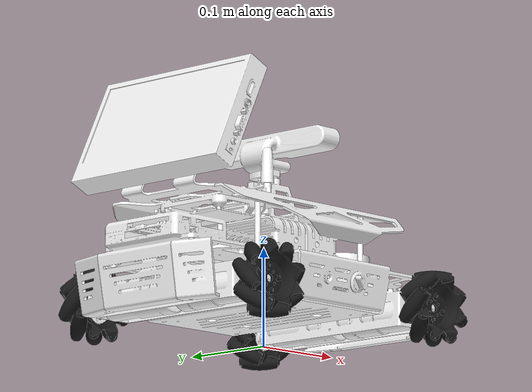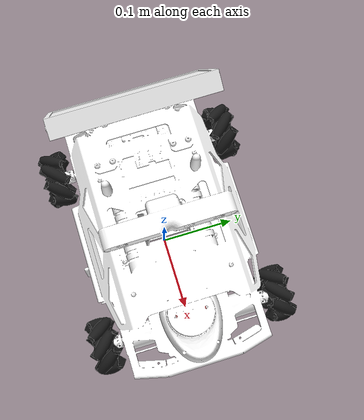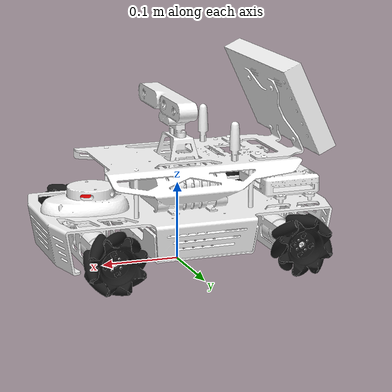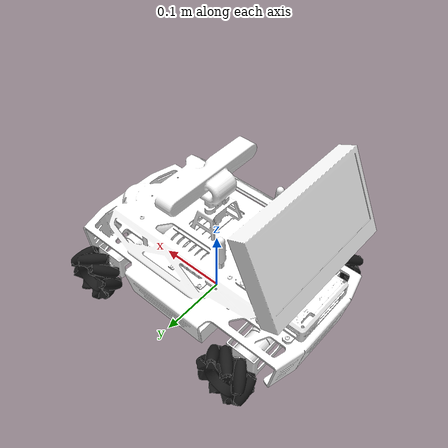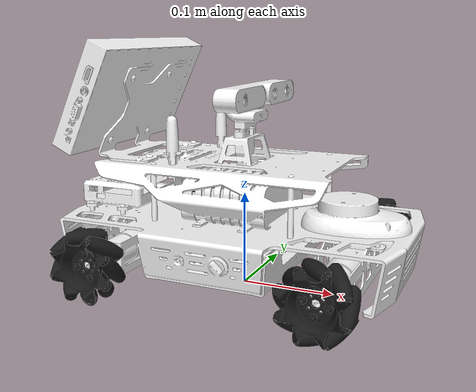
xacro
<?xml version="1.0"?>
<robot name="xrobot" xmlns:xacro="http://www.ros.org/wiki/xacro">
    <xacro:arg name="use_lidar" default="true" />
    <xacro:arg name="use_camera" default="true" />
    <xacro:arg name="use_imu" default="true" />

    <xacro:include filename="$(find xrobot_description)/urdf/components/common_properties.xacro" />
    <xacro:include filename="$(find xrobot_description)/urdf/chassises/xrobot_chassis_8kt.xacro" />
    <xacro:include filename="$(find xrobot_description)/urdf/sensers/xrobot_depth_camera.xacro" />
    <xacro:include filename="$(find xrobot_description)/urdf/sensers/xrobot_imu.xacro" />
    <xacro:include filename="$(find xrobot_description)/urdf/sensers/xrobot_lidar.xacro" />

    <xacro:property name="lidar_offset_x" value="0.115" />
    <xacro:property name="lidar_offset_y" value="0" />
    <xacro:property name="lidar_offset_z" value="0.06" />

    <xacro:property name="camera_offset_x" value="0.012" />
    <xacro:property name="camera_offset_y" value="0" />
    <xacro:property name="camera_offset_z" value="0.165" />

    <xacro:property name="imu_offset_x" value="0.0" />
    <xacro:property name="imu_offset_y" value="0" />
    <xacro:property name="imu_offset_z" value="0.0" />

    <link name="base_footprint"/>

    <xacro:xrobot_chassis  base_mass="4.0" base_x_size="0.34" base_y_size="0.30" base_z_size="0.20">
    </xacro:xrobot_chassis>

    <xacro:if value="$(arg use_lidar)">
        <xacro:xrobot_lidar parent_prefix="base_link" frame_prefix="laser">
        <origin xyz="${lidar_offset_x} ${lidar_offset_y} ${lidar_offset_z}" rpy="0 0 0"/>
        </xacro:xrobot_lidar>
    </xacro:if>

    <xacro:if value="$(arg use_camera)">
        <xacro:xrobot_depth_camera parent_prefix="base_link" frame_prefix="camera">
            <origin xyz="${camera_offset_x} ${camera_offset_y} ${camera_offset_z}" rpy="0 0 0"/>
        </xacro:xrobot_depth_camera>
    </xacro:if>

    <xacro:if value="$(arg use_imu)">
        <xacro:xrobot_imu parent_prefix="base_link" frame_prefix="imu">
            <origin xyz="${imu_offset_x} ${imu_offset_y} ${imu_offset_z}" rpy="0 0 0"/>
        </xacro:xrobot_imu>
    </xacro:if>
</robot>

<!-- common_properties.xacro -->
<!--
Various useful properties such as constants and materials
-->
<robot name="xacro_properties" xmlns:xacro="http://ros.org/wiki/xacro">
    <xacro:property name="M_PI" value="3.1415926535897931" />

    <!-- Defining the colors used in this robot -->
    <material name="White">
        <color rgba="1 1 1 1"/>
    </material>
    <material name="Gray">
        <color rgba="0.5 0.5 0.5 1"/>
    </material>
    <material name="LightGray">
        <color rgba="0.6 0.6 0.6 1"/>
    </material>
    <material name="DarkGray">
        <color rgba="0.3 0.3 0.3 1"/>
    </material>
    <material name="Black">
        <color rgba="0.1 0.1 0.1 1"/>
    </material>
    <material name="Red">
        <color rgba="1 0 0 1"/>
    </material>
    <material name="Green">
        <color rgba="0.0 0.8 0.0 1"/>
    </material>
    <material name="Blue">
        <color rgba="0.0 0.0 1.0 1"/>
    </material>
    <material name="GreyBlue">
        <color rgba="0.4 0.4 1.0 1"/>
    </material>
    <material name="Orange">
        <color rgba="1.0 0.7 0.0 1"/>
    </material>
    <material name="Yellow">
        <color rgba="1 0.4 0 1"/>
    </material>

    <!-- Macro for inertia matrix -->
    <xacro:macro name="sphere_inertial_matrix" params="m r">
        <inertial>
            <mass value="${m}" />
            <inertia ixx="${2*m*r*r/5}" ixy="0" ixz="0"
                iyy="${2*m*r*r/5}" iyz="0"
                izz="${2*m*r*r/5}" />
        </inertial>
    </xacro:macro>

    <xacro:macro name="cylinder_inertial_matrix" params="m r h">
        <inertial>
            <mass value="${m}" />
            <inertia ixx="${m*(3*r*r+h*h)/12}" ixy = "0" ixz = "0"
                iyy="${m*(3*r*r+h*h)/12}" iyz = "0"
                izz="${m*r*r/2}" />
        </inertial>
    </xacro:macro>

    <xacro:macro name="box_inertial_matrix" params="m l w h">
       <inertial>
               <mass value="${m}" />
               <inertia ixx="${m*(h*h + l*l)/12}" ixy = "0" ixz = "0"
                   iyy="${m*(w*w + l*l)/12}" iyz= "0"
                   izz="${m*(w*w + h*h)/12}" />
       </inertial>
   </xacro:macro>
</robot>

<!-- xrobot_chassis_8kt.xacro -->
<robot xmlns:xacro="http://www.ros.org/wiki/xacro" name="chassis">
    <xacro:include filename="$(find xrobot_description)/urdf/wheels/xrobot_8kt_mecanum_wheel.xacro" />
    <xacro:macro name="xrobot_chassis" params="
        parent_prefix:=base_footprint
        wheelbase:=0.24
        track:=0.24
        base_mass
        base_x_size
        base_y_size
        base_z_size">

        <joint name="base_joint" type="fixed">
            <parent link="${parent_prefix}"/>
            <child link="base_link"/>
            <origin xyz="0.0 0.0 0.04" rpy="0 0 0"/>
        </joint>

        <!-- Base link -->
        <link name="base_link">
            <visual>
                <origin xyz="0.0 0.0 0.097" rpy="${M_PI/2} 0 0" />
                <geometry>
                    <mesh filename="package://xrobot_description/meshes/bases/8kt_s.stl" scale="0.001 0.001 0.001"/>
                </geometry>
                <material name="White"/>
            </visual>
            <collision>
                <origin xyz="0 0 0" rpy="0 0 0" />
                <geometry>
                    <box size="${base_x_size} ${base_y_size} ${base_z_size}"/>
                </geometry>
            </collision>
            <inertial>
                <origin xyz="0 0 0" rpy="0 0 0"/>
                <mass value="${base_mass}"/>
                <inertia ixx="0.1" ixy="0.0" ixz="0.0"
                        iyy="0.1" iyz="0.0"
                        izz="0.5" />
            </inertial>
        </link>

        <xacro:mecanum_wheel_right parent_prefix="base_link" wheel_prefix="left_front" reflect="1">
            <origin xyz="${wheelbase/2} ${track/2} 0" rpy="0 0 0" />
        </xacro:mecanum_wheel_right>

        <xacro:mecanum_wheel_left parent_prefix="base_link" wheel_prefix="right_front" reflect="-1">
            <origin xyz="${wheelbase/2} ${-track/2} 0" rpy="${M_PI} 0 0" />
        </xacro:mecanum_wheel_left>

        <xacro:mecanum_wheel_left parent_prefix="base_link" wheel_prefix="left_back" reflect="1">
            <origin xyz="${-wheelbase/2} ${track/2} 0" rpy="0 0 0" />
        </xacro:mecanum_wheel_left>

        <xacro:mecanum_wheel_right parent_prefix="base_link" wheel_prefix="right_back" reflect="-1">
            <origin xyz="${-wheelbase/2} ${-track/2} 0" rpy="${M_PI} 0 0" />
        </xacro:mecanum_wheel_right>

        <gazebo>

            <plugin name="mecanum_controller" filename="libgazebo_ros_planar_move.so">
                <updateRate>100.0</updateRate>
                <torque>50</torque>
                <publishTF>true</publishTF>
                <leftFrontJoint>left_front_wheel_joint</leftFrontJoint>
                <rightFrontJoint>right_front_wheel_joint</rightFrontJoint>
                <leftRearJoint>left_back_wheel_joint</leftRearJoint>
                <rightRearJoint>right_back_wheel_joint</rightRearJoint>
                <robotBaseFrame>base_footprint</robotBaseFrame>
                <commandTopic>cmd_vel</commandTopic>
                <odometryTopic>odom</odometryTopic>
                <odometryFrame>odom</odometryFrame>
            </plugin>
        </gazebo>
    </xacro:macro>
</robot>

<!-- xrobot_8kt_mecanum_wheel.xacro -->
<robot xmlns:xacro="http://www.ros.org/wiki/xacro" name="wheel">

    <xacro:property name="wheel_mass"   value="0.02" />
    <xacro:property name="wheel_radius" value="0.04"/>
    <xacro:property name="wheel_width" value="0.04"/>

    <!-- Transmission is important to link the joints and the controller -->
    <xacro:include filename="$(find xrobot_description)/urdf/wheels/wheel_transmission.xacro" />

    <!-- 右旋麦轮 -->
    <xacro:macro name="mecanum_wheel_right" params="parent_prefix:=base_link wheel_prefix reflect *joint_pose">
        <link name="${wheel_prefix}_wheel_link">
            <inertial>
                <origin xyz="0 0 0" />
                <mass value="${wheel_mass}" />
                <inertia ixx="1e-6" ixy="0.0" ixz="0.0"
                         iyy="1e-6" iyz="0.0"
                         izz="1e-6" />
            </inertial>
            <visual>
                <origin xyz="0 0 0" rpy="${M_PI/2} 0 0" />
                <geometry>
                    <mesh filename="package://xrobot_description/meshes/wheels/mecanum_wheel_80mm_right_s.stl" scale="0.001 0.001 0.001"/>
                </geometry>
                <material name="Black"/>
            </visual>
            <collision>
                <origin xyz="0 0 0" rpy="${M_PI/2} 0 0" />
                <geometry>
                    <cylinder length="${wheel_width}" radius="${wheel_radius}" />
                </geometry>
            </collision>
        </link>

        <joint name="${wheel_prefix}_wheel_joint" type="continuous">
            <parent link="${parent_prefix}"/>
            <child link="${wheel_prefix}_wheel_link"/>
            <xacro:insert_block name="joint_pose"/>
            <axis xyz="0 ${reflect*1} 0"/>
        </joint>

        <xacro:wheel_transmission prefix="${wheel_prefix}" />

        <gazebo reference="${wheel_prefix}_wheel_link">
            <material>Gazebo/Black</material>
            <mu1>100000000</mu1>
            <mu2>100000000</mu2>
            <kp>10000000.0</kp>
            <kd>1.0</kd>
            <minDepth>0.01</minDepth>
            <fdir1>1 0 0</fdir1>
            <maxContacts value="64"/>
        </gazebo>
    </xacro:macro>

    <!-- 左旋麦轮 -->
    <xacro:macro name="mecanum_wheel_left" params="parent_prefix:=base_link wheel_prefix reflect *joint_pose">
        <link name="${wheel_prefix}_wheel_link">
            <inertial>
                <origin xyz="0 0 0" />
                <mass value="${wheel_mass}" />
                <inertia ixx="1e-6" ixy="0.0" ixz="0.0"
                         iyy="1e-6" iyz="0.0"
                         izz="1e-6" />
            </inertial>
            <visual>
                <origin xyz="0 0 0" rpy="${M_PI/2} 0 0" />
                <geometry>
                    <mesh filename="package://xrobot_description/meshes/wheels/mecanum_wheel_80mm_left_s.stl" scale="0.001 0.001 0.001"/>
                </geometry>
                <material name="Black"/>
            </visual>
            <collision>
                <origin xyz="0 0 0" rpy="${M_PI/2} 0 0" />
                <geometry>
                    <cylinder length="${wheel_width}" radius="${wheel_radius}" />
                </geometry>
            </collision>
        </link>

        <joint name="${wheel_prefix}_wheel_joint" type="continuous">
            <parent link="${parent_prefix}"/>
            <child link="${wheel_prefix}_wheel_link"/>
            <xacro:insert_block name="joint_pose"/>
            <axis xyz="0 ${reflect*1} 0"/>
        </joint>

        <xacro:wheel_transmission prefix="${wheel_prefix}" />

        <gazebo reference="${wheel_prefix}_wheel_link">
            <material>Gazebo/Black</material>
            <mu1>100000000</mu1>
            <mu2>100000000</mu2>
            <kp>10000000.0</kp>
            <kd>1.0</kd>
            <minDepth>0.01</minDepth>
            <fdir1>1 0 0</fdir1>
            <maxContacts value="64"/>
        </gazebo>
    </xacro:macro>
</robot>

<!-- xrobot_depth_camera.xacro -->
<robot xmlns:xacro="http://www.ros.org/wiki/xacro" name="camera">
    <xacro:macro name="xrobot_depth_camera" params="parent_prefix:=base_link frame_prefix:=depth_camera *joint_pose">
        <link name="${frame_prefix}_link">
            <inertial>
                <mass value="0.1" />
                <origin xyz="0 0 0" />
                <inertia ixx="1e-6" ixy="0.0" ixz="0.0"
                         iyy="1e-6" iyz="0.0"
                         izz="1e-6" />
            </inertial>

            <visual>
                <origin xyz="0 0 0" rpy="0 0 0" />
                <geometry>
                    <box size="0.015 0.08 0.015"/>
                </geometry>
                <material name="Yellow"/>
            </visual>

            <collision>
                <origin xyz="0.0 0.0 0.0" rpy="0 0 0" />
                <geometry>
                    <box size="0.02 0.06 0.015"/>
                </geometry>
            </collision>
        </link>

        <joint type="fixed" name="camera_joint">
            <xacro:insert_block name="joint_pose"/>
            <child link="${frame_prefix}_link"/>
            <parent link="${parent_prefix}"/>
        </joint>

        <gazebo reference="${frame_prefix}_link">
            <material>Gazebo/Yellow</material>
            <sensor type="depth" name="depth_camera">
                <pose>0 0 0 0 0 0</pose>
                <always_on>true</always_on>
                <visualize>true</visualize>
                <update_rate>10.0</update_rate>
                <camera name="head">
                    <horizontal_fov>1.3962634</horizontal_fov>
                    <image>
                        <width>640</width>
                        <height>480</height>
                        <format>R8G8B8</format>
                    </image>
                    <clip>
                        <near>0.02</near>
                        <far>300</far>
                    </clip>
                </camera>
                <plugin name="gazebo_depth_camera_sensor" filename="libgazebo_ros_openni_kinect.so">
                    <baseline>0.2</baseline>
                    <alwaysOn>true</alwaysOn>
                    <updateRate>0.0</updateRate>
                    <cameraName>${frame_prefix}</cameraName>
                    <imageTopicName>/rgb/image_raw</imageTopicName>
                    <cameraInfoTopicName>/rgb/camera_info</cameraInfoTopicName>
                    <depthImageTopicName>/depth/image_raw</depthImageTopicName>
                    <depthImageCameraInfoTopicName>/depth/camera_info</depthImageCameraInfoTopicName>
                    <pointCloudTopicName>/depth/points</pointCloudTopicName>
                    <frameName>${frame_prefix}_link</frameName>

                    <pointCloudCutoff>0.5</pointCloudCutoff>
                    <pointCloudCutoffMax>3.0</pointCloudCutoffMax>
                    <distortionK1>0</distortionK1>
                    <distortionK2>0</distortionK2>
                    <distortionK3>0</distortionK3>
                    <distortionT1>0</distortionT1>
                    <distortionT2>0</distortionT2>
                    <CxPrime>0</CxPrime>
                    <Cx>0</Cx>
                    <Cy>0</Cy>
                    <focalLength>0</focalLength>
                    <hackBaseline>0</hackBaseline>
                </plugin>
            </sensor>
        </gazebo>

    </xacro:macro>
</robot>

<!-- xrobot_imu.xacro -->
<robot xmlns:xacro="http://www.ros.org/wiki/xacro" name="imu">
    <xacro:macro name="xrobot_imu" params="parent_prefix:=base_link frame_prefix:=imu *joint_pose">
        <link name="${frame_prefix}_link">
            <inertial>
                <mass value="0.01" />
                <origin xyz="0 0 0" />
                <inertia ixx="1e-6" ixy="0.0" ixz="0.0"
                         iyy="1e-6" iyz="0.0"
                         izz="1e-6" />
            </inertial>

            <visual>
                <origin xyz="0 0 0" rpy="0 0 0" />
                <geometry>
                    <box size="0.001 0.001 0.001"/>
                </geometry>
                <material name="Black"/>
            </visual>

            <collision>
                <origin xyz="0.0 0.0 0.0" rpy="0 0 0" />
                <geometry>
                    <box size="0.001 0.001 0.001"/>
                </geometry>
            </collision>
        </link>

        <joint type="fixed" name="imu_joint">
            <xacro:insert_block name="joint_pose"/>
            <child link="${frame_prefix}_link"/>
            <parent link="${parent_prefix}"/>
        </joint>

        <gazebo reference="${frame_prefix}_link">
            <material>Gazebo/Black</material>
            <gravity>true</gravity>
            <sensor type="imu" name="imu_sensor">
                <pose>0 0 0 0 0 0</pose>
                <always_on>true</always_on>
                <visualize>true</visualize>
                <update_rate>100</update_rate>
                <topic>__default_topic__</topic>
                <plugin name="gazebo_imu" filename="libgazebo_ros_imu_sensor.so">
                    <topicName>imu</topicName>
                    <bodyName>${frame_prefix}_link</bodyName>
                    <updateRateHZ>100.0</updateRateHZ>
                    <gaussianNoise>0.001</gaussianNoise>
                    <xyzOffset>0 0 0</xyzOffset>
                    <rpyOffset>0 0 0</rpyOffset>
                    <frameName>${frame_prefix}_link</frameName>
                </plugin>
            </sensor>
        </gazebo>

    </xacro:macro>
</robot>

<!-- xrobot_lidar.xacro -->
<robot xmlns:xacro="http://www.ros.org/wiki/xacro" name="laser">
    <xacro:macro name="xrobot_lidar" params="parent_prefix:=base_link frame_prefix:=laser *joint_pose">
        <link name="${frame_prefix}_link">
            <inertial>
                <mass value="0.1" />
                <origin xyz="0 0 0" />
                <inertia ixx="1e-6" ixy="0.0" ixz="0.0"
                         iyy="1e-6" iyz="0.0"
                         izz="1e-6" />
            </inertial>

            <visual>
                <origin xyz="0 0 0" rpy="0 0 0" />
                <geometry>
                    <cylinder radius="0.02" length="0.01"/>
                </geometry>
                <material name="Red"/>
            </visual>

            <collision>
                <origin xyz="0.0 0.0 0.0" rpy="0 0 0" />
                <geometry>
                    <cylinder radius="0.032" length="0.016"/>
                </geometry>
            </collision>
        </link>

        <joint type="fixed" name="laser_joint">
            <xacro:insert_block name="joint_pose"/>
            <child link="${frame_prefix}_link"/>
            <parent link="${parent_prefix}"/>
        </joint>

        <gazebo reference="${frame_prefix}_link">
            <material>Gazebo/Red</material>
            <sensor type="ray" name="laser_sensor">
                <pose>0 0 0 0 0 0</pose>
                <visualize>false</visualize>
                <update_rate>8</update_rate>
                <ray>
                    <scan>
                      <horizontal>
                        <samples>720</samples>
                        <resolution>1</resolution>
                        <min_angle>-1.570796</min_angle>
                        <max_angle>1.570796</max_angle>
                      </horizontal>
                    </scan>
                    <range>
                      <min>0.05</min>
                      <max>8.0</max>
                      <resolution>0.01</resolution>
                    </range>
                    <noise>
                      <type>gaussian</type>
                      <mean>0.0</mean>
                      <stddev>0.01</stddev>
                    </noise>
                </ray>
                <plugin name="gazebo_laser" filename="libgazebo_ros_laser.so">
                    <topicName>scan</topicName>
                    <frameName>${frame_prefix}_link</frameName>
                </plugin>
            </sensor>
        </gazebo>

    </xacro:macro>
</robot>
